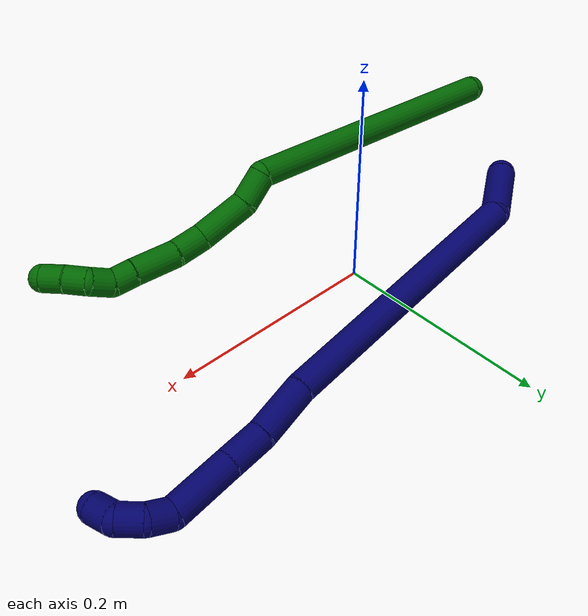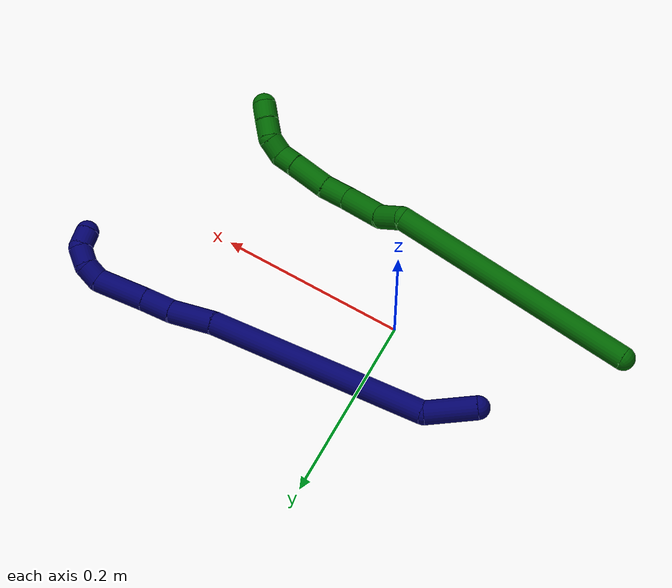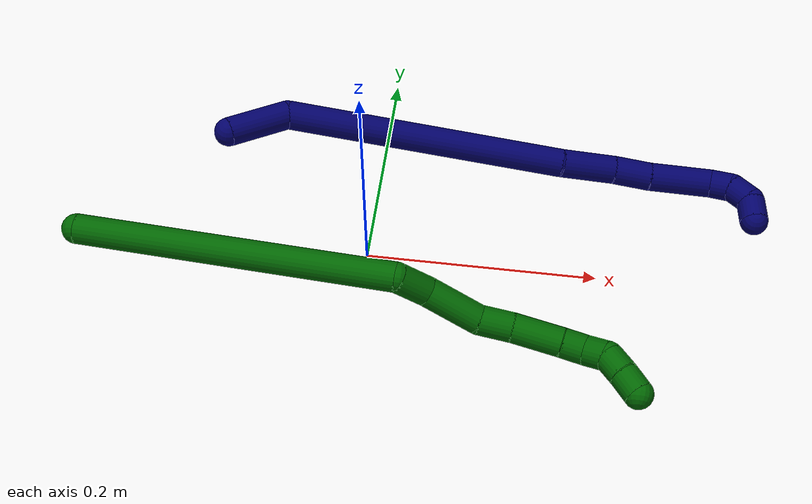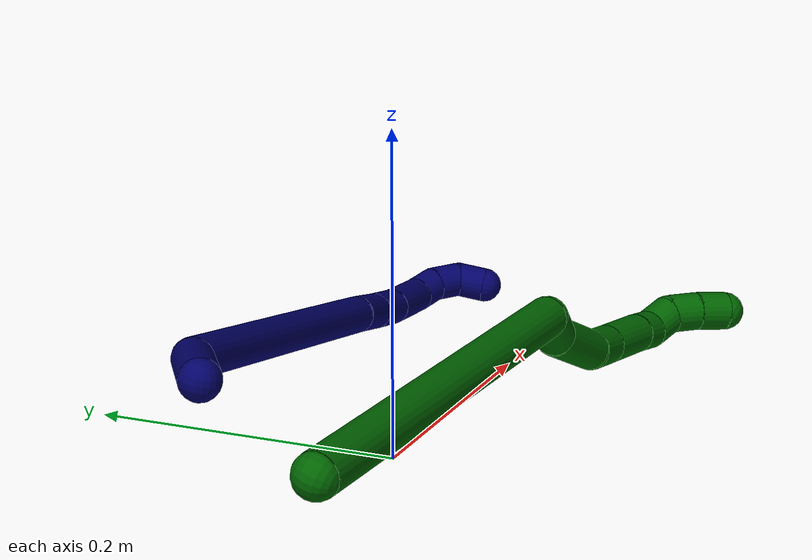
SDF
<sdf version="1.7">
 <world name="default">
  <model name="6">
   <static>0</static>
   <link name="6">
    <collision name="collision-cylinder-e_1_1_4">
     <pose>0.122059 0.056184 0.007182 -1.44366 1.13633 -1.02398</pose>
     <geometry><cylinder><radius>0.0125</radius><length>0.269121</length></cylinder></geometry>
     <surface>
      <friction><ode><mu>1.16</mu><mu2>1.16</mu2><slip1>0</slip1><slip2>0</slip2></ode></friction>
      <contact><ode><kp>1e+06</kp><kd>1</kd><max_vel>0</max_vel><min_depth>0.001</min_depth></ode></contact>
     </surface>
    </collision>
    <visual name="visual-cylinder-e_1_1_4">
     <pose>0.122059 0.056184 0.007182 -1.44366 1.13633 -1.02398</pose>
     <geometry><cylinder><radius>0.0125</radius><length>0.269121</length></cylinder></geometry>
     <material><ambient>0 0.392157 0.003922 1</ambient></material>
    </visual>
    <collision name="collision-cylinder-e_2_4_5">
     <pose>0.25874 0.108194 0.015871 1.22413 1.2762 0.959978</pose>
     <geometry><cylinder><radius>0.0125</radius><length>0.030561</length></cylinder></geometry>
     <surface>
      <friction><ode><mu>1.16</mu><mu2>1.16</mu2><slip1>0</slip1><slip2>0</slip2></ode></friction>
      <contact><ode><kp>1e+06</kp><kd>1</kd><max_vel>0</max_vel><min_depth>0.001</min_depth></ode></contact>
     </surface>
    </collision>
    <visual name="visual-cylinder-e_2_4_5">
     <pose>0.25874 0.108194 0.015871 1.22413 1.2762 0.959978</pose>
     <geometry><cylinder><radius>0.0125</radius><length>0.030561</length></cylinder></geometry>
     <material><ambient>0 0.392157 0.003922 1</ambient></material>
    </visual>
    <collision name="collision-cylinder-e_3_5_6">
     <pose>0.296715 0.104498 0.024386 -0.06786 1.27862 -0.050461</pose>
     <geometry><cylinder><radius>0.0125</radius><length>0.048774</length></cylinder></geometry>
     <surface>
      <friction><ode><mu>1.16</mu><mu2>1.16</mu2><slip1>0</slip1><slip2>0</slip2></ode></friction>
      <contact><ode><kp>1e+06</kp><kd>1</kd><max_vel>0</max_vel><min_depth>0.001</min_depth></ode></contact>
     </surface>
    </collision>
    <visual name="visual-cylinder-e_3_5_6">
     <pose>0.296715 0.104498 0.024386 -0.06786 1.27862 -0.050461</pose>
     <geometry><cylinder><radius>0.0125</radius><length>0.048774</length></cylinder></geometry>
     <material><ambient>0 0.392157 0.003922 1</ambient></material>
    </visual>
    <collision name="collision-cylinder-e_4_6_7">
     <pose>0.333816 0.108581 0.032559 -1.25854 1.30174 -1.01247</pose>
     <geometry><cylinder><radius>0.0125</radius><length>0.02852</length></cylinder></geometry>
     <surface>
      <friction><ode><mu>1.16</mu><mu2>1.16</mu2><slip1>0</slip1><slip2>0</slip2></ode></friction>
      <contact><ode><kp>1e+06</kp><kd>1</kd><max_vel>0</max_vel><min_depth>0.001</min_depth></ode></contact>
     </surface>
    </collision>
    <visual name="visual-cylinder-e_4_6_7">
     <pose>0.333816 0.108581 0.032559 -1.25854 1.30174 -1.01247</pose>
     <geometry><cylinder><radius>0.0125</radius><length>0.02852</length></cylinder></geometry>
     <material><ambient>0 0.392157 0.003922 1</ambient></material>
    </visual>
    <collision name="collision-cylinder-e_5_7_8">
     <pose>0.366634 0.11957 0.03743 -1.10543 1.16208 -0.769717</pose>
     <geometry><cylinder><radius>0.0125</radius><length>0.041565</length></cylinder></geometry>
     <surface>
      <friction><ode><mu>1.16</mu><mu2>1.16</mu2><slip1>0</slip1><slip2>0</slip2></ode></friction>
      <contact><ode><kp>1e+06</kp><kd>1</kd><max_vel>0</max_vel><min_depth>0.001</min_depth></ode></contact>
     </surface>
    </collision>
    <visual name="visual-cylinder-e_5_7_8">
     <pose>0.366634 0.11957 0.03743 -1.10543 1.16208 -0.769717</pose>
     <geometry><cylinder><radius>0.0125</radius><length>0.041565</length></cylinder></geometry>
     <material><ambient>0 0.392157 0.003922 1</ambient></material>
    </visual>
    <collision name="collision-cylinder-e_6_8_9">
     <pose>0.395166 0.130048 0.043045 -1.01842 1.20384 -0.732481</pose>
     <geometry><cylinder><radius>0.0125</radius><length>0.020274</length></cylinder></geometry>
     <surface>
      <friction><ode><mu>1.16</mu><mu2>1.16</mu2><slip1>0</slip1><slip2>0</slip2></ode></friction>
      <contact><ode><kp>1e+06</kp><kd>1</kd><max_vel>0</max_vel><min_depth>0.001</min_depth></ode></contact>
     </surface>
    </collision>
    <visual name="visual-cylinder-e_6_8_9">
     <pose>0.395166 0.130048 0.043045 -1.01842 1.20384 -0.732481</pose>
     <geometry><cylinder><radius>0.0125</radius><length>0.020274</length></cylinder></geometry>
     <material><ambient>0 0.392157 0.003922 1</ambient></material>
    </visual>
    <collision name="collision-cylinder-e_7_9_10">
     <pose>0.411225 0.140603 0.047588 -1.23132 0.695057 -0.501675</pose>
     <geometry><cylinder><radius>0.0125</radius><length>0.020601</length></cylinder></geometry>
     <surface>
      <friction><ode><mu>1.16</mu><mu2>1.16</mu2><slip1>0</slip1><slip2>0</slip2></ode></friction>
      <contact><ode><kp>1e+06</kp><kd>1</kd><max_vel>0</max_vel><min_depth>0.001</min_depth></ode></contact>
     </surface>
    </collision>
    <visual name="visual-cylinder-e_7_9_10">
     <pose>0.411225 0.140603 0.047588 -1.23132 0.695057 -0.501675</pose>
     <geometry><cylinder><radius>0.0125</radius><length>0.020601</length></cylinder></geometry>
     <material><ambient>0 0.392157 0.003922 1</ambient></material>
    </visual>
    <collision name="collision-cylinder-e_8_10_11">
     <pose>0.422927 0.152974 0.05747 -0.59551 0.527906 -0.165494</pose>
     <geometry><cylinder><radius>0.0125</radius><length>0.020269</length></cylinder></geometry>
     <surface>
      <friction><ode><mu>1.16</mu><mu2>1.16</mu2><slip1>0</slip1><slip2>0</slip2></ode></friction>
      <contact><ode><kp>1e+06</kp><kd>1</kd><max_vel>0</max_vel><min_depth>0.001</min_depth></ode></contact>
     </surface>
    </collision>
    <visual name="visual-cylinder-e_8_10_11">
     <pose>0.422927 0.152974 0.05747 -0.59551 0.527906 -0.165494</pose>
     <geometry><cylinder><radius>0.0125</radius><length>0.020269</length></cylinder></geometry>
     <material><ambient>0 0.392157 0.003922 1</ambient></material>
    </visual>
    <collision name="collision-cylinder-e_9_11_2">
     <pose>0.433273 0.16195 0.07241 -0.48616 0.542092 -0.137604</pose>
     <geometry><cylinder><radius>0.0125</radius><length>0.020315</length></cylinder></geometry>
     <surface>
      <friction><ode><mu>1.16</mu><mu2>1.16</mu2><slip1>0</slip1><slip2>0</slip2></ode></friction>
      <contact><ode><kp>1e+06</kp><kd>1</kd><max_vel>0</max_vel><min_depth>0.001</min_depth></ode></contact>
     </surface>
    </collision>
    <visual name="visual-cylinder-e_9_11_2">
     <pose>0.433273 0.16195 0.07241 -0.48616 0.542092 -0.137604</pose>
     <geometry><cylinder><radius>0.0125</radius><length>0.020315</length></cylinder></geometry>
     <material><ambient>0 0.392157 0.003922 1</ambient></material>
    </visual>
    <collision name="collision-sphere-2">
     <pose>0.438513 0.166015 0.080103 0 -0 0</pose>
     <geometry><sphere><radius>0.0125</radius></sphere></geometry>
     <surface>
      <friction><ode><mu>1.16</mu><mu2>1.16</mu2><slip1>0</slip1><slip2>0</slip2></ode></friction>
      <contact><ode><kp>1e+06</kp><kd>1</kd><max_vel>0</max_vel><min_depth>0.001</min_depth></ode></contact>
     </surface>
    </collision>
    <visual name="visual-sphere-2">
     <pose>0.438513 0.166015 0.080103 0 -0 0</pose>
     <geometry><sphere><radius>0.0125</radius></sphere></geometry>
     <material><ambient>0 0.392157 0.003922 1</ambient></material>
    </visual>
    <collision name="collision-sphere-11">
     <pose>0.428032 0.157884 0.064717 0 -0 0</pose>
     <geometry><sphere><radius>0.0125</radius></sphere></geometry>
     <surface>
      <friction><ode><mu>1.16</mu><mu2>1.16</mu2><slip1>0</slip1><slip2>0</slip2></ode></friction>
      <contact><ode><kp>1e+06</kp><kd>1</kd><max_vel>0</max_vel><min_depth>0.001</min_depth></ode></contact>
     </surface>
    </collision>
    <visual name="visual-sphere-11">
     <pose>0.428032 0.157884 0.064717 0 -0 0</pose>
     <geometry><sphere><radius>0.0125</radius></sphere></geometry>
     <material><ambient>0 0.392157 0.003922 1</ambient></material>
    </visual>
    <collision name="collision-sphere-10">
     <pose>0.417822 0.148063 0.050222 0 -0 0</pose>
     <geometry><sphere><radius>0.0125</radius></sphere></geometry>
     <surface>
      <friction><ode><mu>1.16</mu><mu2>1.16</mu2><slip1>0</slip1><slip2>0</slip2></ode></friction>
      <contact><ode><kp>1e+06</kp><kd>1</kd><max_vel>0</max_vel><min_depth>0.001</min_depth></ode></contact>
     </surface>
    </collision>
    <visual name="visual-sphere-10">
     <pose>0.417822 0.148063 0.050222 0 -0 0</pose>
     <geometry><sphere><radius>0.0125</radius></sphere></geometry>
     <material><ambient>0 0.392157 0.003922 1</ambient></material>
    </visual>
    <collision name="collision-sphere-9">
     <pose>0.404628 0.133144 0.044953 0 -0 0</pose>
     <geometry><sphere><radius>0.0125</radius></sphere></geometry>
     <surface>
      <friction><ode><mu>1.16</mu><mu2>1.16</mu2><slip1>0</slip1><slip2>0</slip2></ode></friction>
      <contact><ode><kp>1e+06</kp><kd>1</kd><max_vel>0</max_vel><min_depth>0.001</min_depth></ode></contact>
     </surface>
    </collision>
    <visual name="visual-sphere-9">
     <pose>0.404628 0.133144 0.044953 0 -0 0</pose>
     <geometry><sphere><radius>0.0125</radius></sphere></geometry>
     <material><ambient>0 0.392157 0.003922 1</ambient></material>
    </visual>
    <collision name="collision-sphere-4">
     <pose>0.244118 0.112367 0.014363 0 -0 0</pose>
     <geometry><sphere><radius>0.0125</radius></sphere></geometry>
     <surface>
      <friction><ode><mu>1.16</mu><mu2>1.16</mu2><slip1>0</slip1><slip2>0</slip2></ode></friction>
      <contact><ode><kp>1e+06</kp><kd>1</kd><max_vel>0</max_vel><min_depth>0.001</min_depth></ode></contact>
     </surface>
    </collision>
    <visual name="visual-sphere-4">
     <pose>0.244118 0.112367 0.014363 0 -0 0</pose>
     <geometry><sphere><radius>0.0125</radius></sphere></geometry>
     <material><ambient>0 0.392157 0.003922 1</ambient></material>
    </visual>
    <collision name="collision-sphere-1">
     <geometry><sphere><radius>0.0125</radius></sphere></geometry>
     <surface>
      <friction><ode><mu>1.16</mu><mu2>1.16</mu2><slip1>0</slip1><slip2>0</slip2></ode></friction>
      <contact><ode><kp>1e+06</kp><kd>1</kd><max_vel>0</max_vel><min_depth>0.001</min_depth></ode></contact>
     </surface>
    </collision>
    <visual name="visual-sphere-1">
     <geometry><sphere><radius>0.0125</radius></sphere></geometry>
     <material><ambient>0 0.392157 0.003922 1</ambient></material>
    </visual>
    <collision name="collision-sphere-8">
     <pose>0.385704 0.126952 0.041137 0 -0 0</pose>
     <geometry><sphere><radius>0.0125</radius></sphere></geometry>
     <surface>
      <friction><ode><mu>1.16</mu><mu2>1.16</mu2><slip1>0</slip1><slip2>0</slip2></ode></friction>
      <contact><ode><kp>1e+06</kp><kd>1</kd><max_vel>0</max_vel><min_depth>0.001</min_depth></ode></contact>
     </surface>
    </collision>
    <visual name="visual-sphere-8">
     <pose>0.385704 0.126952 0.041137 0 -0 0</pose>
     <geometry><sphere><radius>0.0125</radius></sphere></geometry>
     <material><ambient>0 0.392157 0.003922 1</ambient></material>
    </visual>
    <collision name="collision-sphere-5">
     <pose>0.273362 0.104021 0.017378 0 -0 0</pose>
     <geometry><sphere><radius>0.0125</radius></sphere></geometry>
     <surface>
      <friction><ode><mu>1.16</mu><mu2>1.16</mu2><slip1>0</slip1><slip2>0</slip2></ode></friction>
      <contact><ode><kp>1e+06</kp><kd>1</kd><max_vel>0</max_vel><min_depth>0.001</min_depth></ode></contact>
     </surface>
    </collision>
    <visual name="visual-sphere-5">
     <pose>0.273362 0.104021 0.017378 0 -0 0</pose>
     <geometry><sphere><radius>0.0125</radius></sphere></geometry>
     <material><ambient>0 0.392157 0.003922 1</ambient></material>
    </visual>
    <collision name="collision-sphere-6">
     <pose>0.320069 0.104974 0.031395 0 -0 0</pose>
     <geometry><sphere><radius>0.0125</radius></sphere></geometry>
     <surface>
      <friction><ode><mu>1.16</mu><mu2>1.16</mu2><slip1>0</slip1><slip2>0</slip2></ode></friction>
      <contact><ode><kp>1e+06</kp><kd>1</kd><max_vel>0</max_vel><min_depth>0.001</min_depth></ode></contact>
     </surface>
    </collision>
    <visual name="visual-sphere-6">
     <pose>0.320069 0.104974 0.031395 0 -0 0</pose>
     <geometry><sphere><radius>0.0125</radius></sphere></geometry>
     <material><ambient>0 0.392157 0.003922 1</ambient></material>
    </visual>
    <collision name="collision-sphere-7">
     <pose>0.347563 0.112189 0.033724 0 -0 0</pose>
     <geometry><sphere><radius>0.0125</radius></sphere></geometry>
     <surface>
      <friction><ode><mu>1.16</mu><mu2>1.16</mu2><slip1>0</slip1><slip2>0</slip2></ode></friction>
      <contact><ode><kp>1e+06</kp><kd>1</kd><max_vel>0</max_vel><min_depth>0.001</min_depth></ode></contact>
     </surface>
    </collision>
    <visual name="visual-sphere-7">
     <pose>0.347563 0.112189 0.033724 0 -0 0</pose>
     <geometry><sphere><radius>0.0125</radius></sphere></geometry>
     <material><ambient>0 0.392157 0.003922 1</ambient></material>
    </visual>
    <inertial>
     <pose>0.22769 0.087028 0.021161 0 -0 0</pose>
     <mass>0.5</mass>
     <inertia>
      <ixx>-0.000189</ixx>
      <ixy>0</ixy>
      <ixz>0</ixz>
      <iyy>0.000815</iyy>
      <iyz>0</iyz>
      <izz>-0.002193</izz>
     </inertia>
    </inertial>
   </link>
   <pose>-0.229589 -0.061137 0.080279 1.91599 0.366018 0.114491</pose>
  </model>
  <model name="7">
   <static>0</static>
   <link name="7">
    <collision name="collision-cylinder-e_1_1_4">
     <pose>0.023229 0.014423 -0.003618 -1.81656 1.00137 -1.22334</pose>
     <geometry><cylinder><radius>0.0125</radius><length>0.055161</length></cylinder></geometry>
     <surface>
      <friction><ode><mu>1.16</mu><mu2>1.16</mu2><slip1>0</slip1><slip2>0</slip2></ode></friction>
      <contact><ode><kp>1e+06</kp><kd>1</kd><max_vel>0</max_vel><min_depth>0.001</min_depth></ode></contact>
     </surface>
    </collision>
    <visual name="visual-cylinder-e_1_1_4">
     <pose>0.023229 0.014423 -0.003618 -1.81656 1.00137 -1.22334</pose>
     <geometry><cylinder><radius>0.0125</radius><length>0.055161</length></cylinder></geometry>
     <material><ambient>0.003922 0 0.403922 1</ambient></material>
    </visual>
    <collision name="collision-cylinder-e_2_4_5">
     <pose>0.168831 0.029736 -0.018389 -3.06198 1.47962 -3.05437</pose>
     <geometry><cylinder><radius>0.0125</radius><length>0.245769</length></cylinder></geometry>
     <surface>
      <friction><ode><mu>1.16</mu><mu2>1.16</mu2><slip1>0</slip1><slip2>0</slip2></ode></friction>
      <contact><ode><kp>1e+06</kp><kd>1</kd><max_vel>0</max_vel><min_depth>0.001</min_depth></ode></contact>
     </surface>
    </collision>
    <visual name="visual-cylinder-e_2_4_5">
     <pose>0.168831 0.029736 -0.018389 -3.06198 1.47962 -3.05437</pose>
     <geometry><cylinder><radius>0.0125</radius><length>0.245769</length></cylinder></geometry>
     <material><ambient>0.003922 0 0.403922 1</ambient></material>
    </visual>
    <collision name="collision-cylinder-e_3_5_6">
     <pose>0.314902 0.033163 -0.033672 -2.59059 1.36903 -2.47473</pose>
     <geometry><cylinder><radius>0.0125</radius><length>0.048375</length></cylinder></geometry>
     <surface>
      <friction><ode><mu>1.16</mu><mu2>1.16</mu2><slip1>0</slip1><slip2>0</slip2></ode></friction>
      <contact><ode><kp>1e+06</kp><kd>1</kd><max_vel>0</max_vel><min_depth>0.001</min_depth></ode></contact>
     </surface>
    </collision>
    <visual name="visual-cylinder-e_3_5_6">
     <pose>0.314902 0.033163 -0.033672 -2.59059 1.36903 -2.47473</pose>
     <geometry><cylinder><radius>0.0125</radius><length>0.048375</length></cylinder></geometry>
     <material><ambient>0.003922 0 0.403922 1</ambient></material>
    </visual>
    <collision name="collision-cylinder-e_4_6_7">
     <pose>0.355156 0.035553 -0.039317 3.0442 1.47912 3.03486</pose>
     <geometry><cylinder><radius>0.0125</radius><length>0.033256</length></cylinder></geometry>
     <surface>
      <friction><ode><mu>1.16</mu><mu2>1.16</mu2><slip1>0</slip1><slip2>0</slip2></ode></friction>
      <contact><ode><kp>1e+06</kp><kd>1</kd><max_vel>0</max_vel><min_depth>0.001</min_depth></ode></contact>
     </surface>
    </collision>
    <visual name="visual-cylinder-e_4_6_7">
     <pose>0.355156 0.035553 -0.039317 3.0442 1.47912 3.03486</pose>
     <geometry><cylinder><radius>0.0125</radius><length>0.033256</length></cylinder></geometry>
     <material><ambient>0.003922 0 0.403922 1</ambient></material>
    </visual>
    <collision name="collision-cylinder-e_5_7_8">
     <pose>0.399505 0.036777 -0.041863 -2.21522 1.50915 -2.165</pose>
     <geometry><cylinder><radius>0.0125</radius><length>0.055686</length></cylinder></geometry>
     <surface>
      <friction><ode><mu>1.16</mu><mu2>1.16</mu2><slip1>0</slip1><slip2>0</slip2></ode></friction>
      <contact><ode><kp>1e+06</kp><kd>1</kd><max_vel>0</max_vel><min_depth>0.001</min_depth></ode></contact>
     </surface>
    </collision>
    <visual name="visual-cylinder-e_5_7_8">
     <pose>0.399505 0.036777 -0.041863 -2.21522 1.50915 -2.165</pose>
     <geometry><cylinder><radius>0.0125</radius><length>0.055686</length></cylinder></geometry>
     <material><ambient>0.003922 0 0.403922 1</ambient></material>
    </visual>
    <collision name="collision-cylinder-e_6_8_9">
     <pose>0.436445 0.035605 -0.039478 0.640135 1.1353 0.416588</pose>
     <geometry><cylinder><radius>0.0125</radius><length>0.020185</length></cylinder></geometry>
     <surface>
      <friction><ode><mu>1.16</mu><mu2>1.16</mu2><slip1>0</slip1><slip2>0</slip2></ode></friction>
      <contact><ode><kp>1e+06</kp><kd>1</kd><max_vel>0</max_vel><min_depth>0.001</min_depth></ode></contact>
     </surface>
    </collision>
    <visual name="visual-cylinder-e_6_8_9">
     <pose>0.436445 0.035605 -0.039478 0.640135 1.1353 0.416588</pose>
     <geometry><cylinder><radius>0.0125</radius><length>0.020185</length></cylinder></geometry>
     <material><ambient>0.003922 0 0.403922 1</ambient></material>
    </visual>
    <collision name="collision-cylinder-e_7_9_10">
     <pose>0.453313 0.026347 -0.033424 1.19619 0.819 0.575064</pose>
     <geometry><cylinder><radius>0.0125</radius><length>0.021128</length></cylinder></geometry>
     <surface>
      <friction><ode><mu>1.16</mu><mu2>1.16</mu2><slip1>0</slip1><slip2>0</slip2></ode></friction>
      <contact><ode><kp>1e+06</kp><kd>1</kd><max_vel>0</max_vel><min_depth>0.001</min_depth></ode></contact>
     </surface>
    </collision>
    <visual name="visual-cylinder-e_7_9_10">
     <pose>0.453313 0.026347 -0.033424 1.19619 0.819 0.575064</pose>
     <geometry><cylinder><radius>0.0125</radius><length>0.021128</length></cylinder></geometry>
     <material><ambient>0.003922 0 0.403922 1</ambient></material>
    </visual>
    <collision name="collision-cylinder-e_8_10_2">
     <pose>0.462831 0.009583 -0.030332 1.52586 0.177235 0.169482</pose>
     <geometry><cylinder><radius>0.0125</radius><length>0.020441</length></cylinder></geometry>
     <surface>
      <friction><ode><mu>1.16</mu><mu2>1.16</mu2><slip1>0</slip1><slip2>0</slip2></ode></friction>
      <contact><ode><kp>1e+06</kp><kd>1</kd><max_vel>0</max_vel><min_depth>0.001</min_depth></ode></contact>
     </surface>
    </collision>
    <visual name="visual-cylinder-e_8_10_2">
     <pose>0.462831 0.009583 -0.030332 1.52586 0.177235 0.169482</pose>
     <geometry><cylinder><radius>0.0125</radius><length>0.020441</length></cylinder></geometry>
     <material><ambient>0.003922 0 0.403922 1</ambient></material>
    </visual>
    <collision name="collision-sphere-2">
     <pose>0.464633 -0.000467 -0.02988 0 -0 0</pose>
     <geometry><sphere><radius>0.0125</radius></sphere></geometry>
     <surface>
      <friction><ode><mu>1.16</mu><mu2>1.16</mu2><slip1>0</slip1><slip2>0</slip2></ode></friction>
      <contact><ode><kp>1e+06</kp><kd>1</kd><max_vel>0</max_vel><min_depth>0.001</min_depth></ode></contact>
     </surface>
    </collision>
    <visual name="visual-sphere-2">
     <pose>0.464633 -0.000467 -0.02988 0 -0 0</pose>
     <geometry><sphere><radius>0.0125</radius></sphere></geometry>
     <material><ambient>0.003922 0 0.403922 1</ambient></material>
    </visual>
    <collision name="collision-sphere-10">
     <pose>0.461029 0.019633 -0.030784 0 -0 0</pose>
     <geometry><sphere><radius>0.0125</radius></sphere></geometry>
     <surface>
      <friction><ode><mu>1.16</mu><mu2>1.16</mu2><slip1>0</slip1><slip2>0</slip2></ode></friction>
      <contact><ode><kp>1e+06</kp><kd>1</kd><max_vel>0</max_vel><min_depth>0.001</min_depth></ode></contact>
     </surface>
    </collision>
    <visual name="visual-sphere-10">
     <pose>0.461029 0.019633 -0.030784 0 -0 0</pose>
     <geometry><sphere><radius>0.0125</radius></sphere></geometry>
     <material><ambient>0.003922 0 0.403922 1</ambient></material>
    </visual>
    <collision name="collision-sphere-9">
     <pose>0.445596 0.033062 -0.036064 0 -0 0</pose>
     <geometry><sphere><radius>0.0125</radius></sphere></geometry>
     <surface>
      <friction><ode><mu>1.16</mu><mu2>1.16</mu2><slip1>0</slip1><slip2>0</slip2></ode></friction>
      <contact><ode><kp>1e+06</kp><kd>1</kd><max_vel>0</max_vel><min_depth>0.001</min_depth></ode></contact>
     </surface>
    </collision>
    <visual name="visual-sphere-9">
     <pose>0.445596 0.033062 -0.036064 0 -0 0</pose>
     <geometry><sphere><radius>0.0125</radius></sphere></geometry>
     <material><ambient>0.003922 0 0.403922 1</ambient></material>
    </visual>
    <collision name="collision-sphere-4">
     <pose>0.046457 0.028846 -0.007236 0 -0 0</pose>
     <geometry><sphere><radius>0.0125</radius></sphere></geometry>
     <surface>
      <friction><ode><mu>1.16</mu><mu2>1.16</mu2><slip1>0</slip1><slip2>0</slip2></ode></friction>
      <contact><ode><kp>1e+06</kp><kd>1</kd><max_vel>0</max_vel><min_depth>0.001</min_depth></ode></contact>
     </surface>
    </collision>
    <visual name="visual-sphere-4">
     <pose>0.046457 0.028846 -0.007236 0 -0 0</pose>
     <geometry><sphere><radius>0.0125</radius></sphere></geometry>
     <material><ambient>0.003922 0 0.403922 1</ambient></material>
    </visual>
    <collision name="collision-sphere-1">
     <geometry><sphere><radius>0.0125</radius></sphere></geometry>
     <surface>
      <friction><ode><mu>1.16</mu><mu2>1.16</mu2><slip1>0</slip1><slip2>0</slip2></ode></friction>
      <contact><ode><kp>1e+06</kp><kd>1</kd><max_vel>0</max_vel><min_depth>0.001</min_depth></ode></contact>
     </surface>
    </collision>
    <visual name="visual-sphere-1">
     <geometry><sphere><radius>0.0125</radius></sphere></geometry>
     <material><ambient>0.003922 0 0.403922 1</ambient></material>
    </visual>
    <collision name="collision-sphere-8">
     <pose>0.427295 0.038148 -0.042893 0 -0 0</pose>
     <geometry><sphere><radius>0.0125</radius></sphere></geometry>
     <surface>
      <friction><ode><mu>1.16</mu><mu2>1.16</mu2><slip1>0</slip1><slip2>0</slip2></ode></friction>
      <contact><ode><kp>1e+06</kp><kd>1</kd><max_vel>0</max_vel><min_depth>0.001</min_depth></ode></contact>
     </surface>
    </collision>
    <visual name="visual-sphere-8">
     <pose>0.427295 0.038148 -0.042893 0 -0 0</pose>
     <geometry><sphere><radius>0.0125</radius></sphere></geometry>
     <material><ambient>0.003922 0 0.403922 1</ambient></material>
    </visual>
    <collision name="collision-sphere-5">
     <pose>0.291205 0.030626 -0.029543 0 -0 0</pose>
     <geometry><sphere><radius>0.0125</radius></sphere></geometry>
     <surface>
      <friction><ode><mu>1.16</mu><mu2>1.16</mu2><slip1>0</slip1><slip2>0</slip2></ode></friction>
      <contact><ode><kp>1e+06</kp><kd>1</kd><max_vel>0</max_vel><min_depth>0.001</min_depth></ode></contact>
     </surface>
    </collision>
    <visual name="visual-sphere-5">
     <pose>0.291205 0.030626 -0.029543 0 -0 0</pose>
     <geometry><sphere><radius>0.0125</radius></sphere></geometry>
     <material><ambient>0.003922 0 0.403922 1</ambient></material>
    </visual>
    <collision name="collision-sphere-6">
     <pose>0.338598 0.035701 -0.037802 0 -0 0</pose>
     <geometry><sphere><radius>0.0125</radius></sphere></geometry>
     <surface>
      <friction><ode><mu>1.16</mu><mu2>1.16</mu2><slip1>0</slip1><slip2>0</slip2></ode></friction>
      <contact><ode><kp>1e+06</kp><kd>1</kd><max_vel>0</max_vel><min_depth>0.001</min_depth></ode></contact>
     </surface>
    </collision>
    <visual name="visual-sphere-6">
     <pose>0.338598 0.035701 -0.037802 0 -0 0</pose>
     <geometry><sphere><radius>0.0125</radius></sphere></geometry>
     <material><ambient>0.003922 0 0.403922 1</ambient></material>
    </visual>
    <collision name="collision-sphere-7">
     <pose>0.371714 0.035405 -0.040832 0 -0 0</pose>
     <geometry><sphere><radius>0.0125</radius></sphere></geometry>
     <surface>
      <friction><ode><mu>1.16</mu><mu2>1.16</mu2><slip1>0</slip1><slip2>0</slip2></ode></friction>
      <contact><ode><kp>1e+06</kp><kd>1</kd><max_vel>0</max_vel><min_depth>0.001</min_depth></ode></contact>
     </surface>
    </collision>
    <visual name="visual-sphere-7">
     <pose>0.371714 0.035405 -0.040832 0 -0 0</pose>
     <geometry><sphere><radius>0.0125</radius></sphere></geometry>
     <material><ambient>0.003922 0 0.403922 1</ambient></material>
    </visual>
    <inertial>
     <pose>0.239827 0.028819 -0.024219 0 -0 0</pose>
     <mass>0.5</mass>
     <inertia>
      <ixx>-9.3e-05</ixx>
      <ixy>0</ixy>
      <ixz>0</ixz>
      <iyy>0.001273</iyy>
      <iyz>0</iyz>
      <izz>-0.001309</izz>
     </inertia>
    </inertial>
   </link>
   <pose>-0.126968 0.057848 0.080636 0.196346 0.078998 0.012816</pose>
  </model>
 </world>
</sdf>
